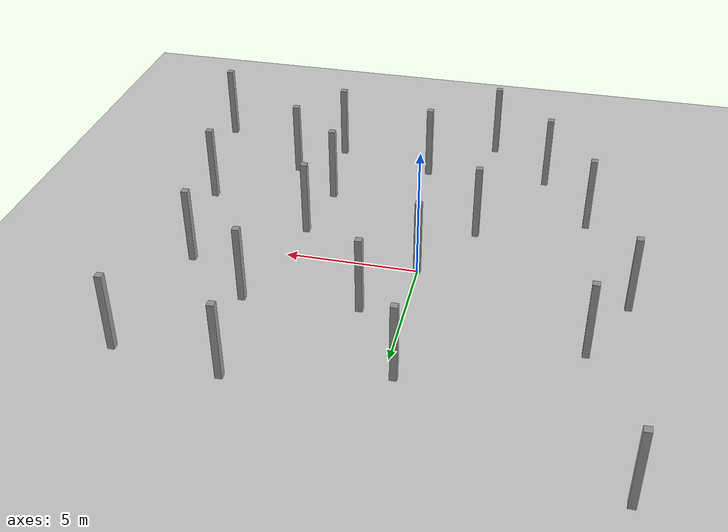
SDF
<sdf version="1.6">
 <world name="default">
  <light name="sun" type="directional">
   <pose>0 0 10 0 -0 0</pose>
   <diffuse>0.8 0.8 0.8 1</diffuse>
   <specular>0.1 0.1 0.1 1</specular>
   <attenuation>
    <range>1000</range>
    <constant>0.9</constant>
    <linear>0.01</linear>
    <quadratic>0.001</quadratic>
   </attenuation>
   <direction>-0.5 0.5 -1</direction>
  </light>
  <model name="ground_plane">
   <static>1</static>
   <link name="link">
    <collision name="collision">
     <geometry><plane><normal>0 0 1</normal><size>100 100</size></plane></geometry>
     <surface><friction><ode><mu>100</mu><mu2>50</mu2></ode></friction></surface>
    </collision>
    <visual name="visual">
     <cast_shadows>0</cast_shadows>
     <geometry><plane><normal>0 0 1</normal><size>100 100</size></plane></geometry>
     <material>
      <script><uri>file://media/materials/scripts/gazebo.material</uri><name>Gazebo/Grey</name></script>
     </material>
    </visual>
   </link>
  </model>
  <gravity>0 0 -9.8</gravity>
  <magnetic_field>6e-06 2.3e-05 -4.2e-05</magnetic_field>
  <atmosphere type="adiabatic"/>
  <physics name="default_physics" default="0" type="ode">
   <max_step_size>0.001</max_step_size>
   <real_time_factor>1</real_time_factor>
   <real_time_update_rate>1000</real_time_update_rate>
  </physics>
  <scene><ambient>0.4 0.4 0.4 1</ambient><background>0.7 0.7 0.7 1</background><shadows>1</shadows></scene>
  <spherical_coordinates>
   <surface_model>EARTH_WGS84</surface_model>
   <latitude_deg>0</latitude_deg>
   <longitude_deg>0</longitude_deg>
   <elevation>0</elevation>
   <heading_deg>0</heading_deg>
  </spherical_coordinates>
  <model name="box_2">
   <link name="link">
    <pose>0 0 1 0 -0 0</pose>
    <inertial>
     <mass>1</mass>
     <inertia><ixx>5.16667</ixx><ixy>0</ixy><ixz>0</ixz><iyy>5.16667</iyy><iyz>0</iyz><izz>5.16667</izz></inertia>
     <pose>0 0 1 0 -0 0</pose>
    </inertial>
    <visual name="ModelPreview_4::link::visual_1">
     <geometry><box><size>0.25 0.25 3</size></box></geometry>
     <material>
      <script><name>Gazebo/Grey</name><uri>file://media/materials/scripts/gazebo.material</uri></script>
      <ambient>0.3 0.3 0.3 1</ambient>
      <diffuse>0.7 0.7 0.7 1</diffuse>
      <specular>0.01 0.01 0.01 1</specular>
      <emissive>0 0 0 1</emissive>
      <shader type="vertex"><normal_map>__default__</normal_map></shader>
     </material>
    </visual>
    <visual name="visual">
     <geometry><box><size>0.25 0.25 3</size></box></geometry>
     <material>
      <script><name>Gazebo/Grey</name><uri>file://media/materials/scripts/gazebo.material</uri></script>
      <ambient>0.3 0.3 0.3 1</ambient>
      <diffuse>0.7 0.7 0.7 1</diffuse>
      <specular>0.01 0.01 0.01 1</specular>
      <emissive>0 0 0 1</emissive>
      <shader type="vertex"><normal_map>__default__</normal_map></shader>
     </material>
    </visual>
    <collision name="collision">
     <geometry><box><size>0.25 0.25 3</size></box></geometry>
     <surface>
      <friction>
       <ode><mu>1</mu><mu2>1</mu2><fdir1>0 0 0</fdir1><slip1>0</slip1><slip2>0</slip2></ode>
       <torsional>
        <coefficient>1</coefficient>
        <patch_radius>0</patch_radius>
        <surface_radius>0</surface_radius>
        <use_patch_radius>1</use_patch_radius>
        <ode><slip>0</slip></ode>
       </torsional>
      </friction>
      <bounce><restitution_coefficient>0</restitution_coefficient><threshold>1e+06</threshold></bounce>
      <contact>
       <collide_without_contact>0</collide_without_contact>
       <collide_without_contact_bitmask>1</collide_without_contact_bitmask>
       <collide_bitmask>1</collide_bitmask>
       <ode>
        <soft_cfm>0</soft_cfm>
        <soft_erp>0.2</soft_erp>
        <kp>1e+13</kp>
        <kd>1</kd>
        <max_vel>0.01</max_vel>
        <min_depth>0</min_depth>
       </ode>
       <bullet>
        <split_impulse>1</split_impulse>
        <split_impulse_penetration_threshold>-0.01</split_impulse_penetration_threshold>
        <soft_cfm>0</soft_cfm>
        <soft_erp>0.2</soft_erp>
        <kp>1e+13</kp>
        <kd>1</kd>
       </bullet>
      </contact>
     </surface>
    </collision>
   </link>
   <static>0</static>
   <pose>0.011479 -0.030638 0.5 0 0 -8.9e-05</pose>
  </model>
  <model name="box_2_0">
   <link name="link">
    <pose>0 0 1 0 -0 0</pose>
    <inertial>
     <mass>1</mass>
     <inertia><ixx>5.16667</ixx><ixy>0</ixy><ixz>0</ixz><iyy>5.16667</iyy><iyz>0</iyz><izz>5.16667</izz></inertia>
     <pose>0 0 1 0 -0 0</pose>
    </inertial>
    <visual name="ModelPreview_4::link::visual_1">
     <geometry><box><size>0.25 0.25 3</size></box></geometry>
     <material>
      <script><name>Gazebo/Grey</name><uri>file://media/materials/scripts/gazebo.material</uri></script>
      <ambient>0.3 0.3 0.3 1</ambient>
      <diffuse>0.7 0.7 0.7 1</diffuse>
      <specular>0.01 0.01 0.01 1</specular>
      <emissive>0 0 0 1</emissive>
      <shader type="vertex"><normal_map>__default__</normal_map></shader>
     </material>
    </visual>
    <visual name="visual">
     <geometry><box><size>0.25 0.25 3</size></box></geometry>
     <material>
      <script><name>Gazebo/Grey</name><uri>file://media/materials/scripts/gazebo.material</uri></script>
      <ambient>0.3 0.3 0.3 1</ambient>
      <diffuse>0.7 0.7 0.7 1</diffuse>
      <specular>0.01 0.01 0.01 1</specular>
      <emissive>0 0 0 1</emissive>
      <shader type="vertex"><normal_map>__default__</normal_map></shader>
     </material>
    </visual>
    <collision name="collision">
     <geometry><box><size>0.25 0.25 3</size></box></geometry>
     <surface>
      <friction>
       <ode><mu>1</mu><mu2>1</mu2><fdir1>0 0 0</fdir1><slip1>0</slip1><slip2>0</slip2></ode>
       <torsional>
        <coefficient>1</coefficient>
        <patch_radius>0</patch_radius>
        <surface_radius>0</surface_radius>
        <use_patch_radius>1</use_patch_radius>
        <ode><slip>0</slip></ode>
       </torsional>
      </friction>
      <bounce><restitution_coefficient>0</restitution_coefficient><threshold>1e+06</threshold></bounce>
      <contact>
       <collide_without_contact>0</collide_without_contact>
       <collide_without_contact_bitmask>1</collide_without_contact_bitmask>
       <collide_bitmask>1</collide_bitmask>
       <ode>
        <soft_cfm>0</soft_cfm>
        <soft_erp>0.2</soft_erp>
        <kp>1e+13</kp>
        <kd>1</kd>
        <max_vel>0.01</max_vel>
        <min_depth>0</min_depth>
       </ode>
       <bullet>
        <split_impulse>1</split_impulse>
        <split_impulse_penetration_threshold>-0.01</split_impulse_penetration_threshold>
        <soft_cfm>0</soft_cfm>
        <soft_erp>0.2</soft_erp>
        <kp>1e+13</kp>
        <kd>1</kd>
       </bullet>
      </contact>
     </surface>
    </collision>
   </link>
   <static>0</static>
   <pose>-1.75418 -2.8754 0.5 1e-06 0 -0.000104</pose>
  </model>
  <model name="box_2_1">
   <link name="link">
    <pose>0 0 1 0 -0 0</pose>
    <inertial>
     <mass>1</mass>
     <inertia><ixx>5.16667</ixx><ixy>0</ixy><ixz>0</ixz><iyy>5.16667</iyy><iyz>0</iyz><izz>5.16667</izz></inertia>
     <pose>0 0 1 0 -0 0</pose>
    </inertial>
    <visual name="ModelPreview_4::link::visual_1">
     <geometry><box><size>0.25 0.25 3</size></box></geometry>
     <material>
      <script><name>Gazebo/Grey</name><uri>file://media/materials/scripts/gazebo.material</uri></script>
      <ambient>0.3 0.3 0.3 1</ambient>
      <diffuse>0.7 0.7 0.7 1</diffuse>
      <specular>0.01 0.01 0.01 1</specular>
      <emissive>0 0 0 1</emissive>
      <shader type="vertex"><normal_map>__default__</normal_map></shader>
     </material>
    </visual>
    <visual name="visual">
     <geometry><box><size>0.25 0.25 3</size></box></geometry>
     <material>
      <script><name>Gazebo/Grey</name><uri>file://media/materials/scripts/gazebo.material</uri></script>
      <ambient>0.3 0.3 0.3 1</ambient>
      <diffuse>0.7 0.7 0.7 1</diffuse>
      <specular>0.01 0.01 0.01 1</specular>
      <emissive>0 0 0 1</emissive>
      <shader type="vertex"><normal_map>__default__</normal_map></shader>
     </material>
    </visual>
    <collision name="collision">
     <geometry><box><size>0.25 0.25 3</size></box></geometry>
     <surface>
      <friction>
       <ode><mu>1</mu><mu2>1</mu2><fdir1>0 0 0</fdir1><slip1>0</slip1><slip2>0</slip2></ode>
       <torsional>
        <coefficient>1</coefficient>
        <patch_radius>0</patch_radius>
        <surface_radius>0</surface_radius>
        <use_patch_radius>1</use_patch_radius>
        <ode><slip>0</slip></ode>
       </torsional>
      </friction>
      <bounce><restitution_coefficient>0</restitution_coefficient><threshold>1e+06</threshold></bounce>
      <contact>
       <collide_without_contact>0</collide_without_contact>
       <collide_without_contact_bitmask>1</collide_without_contact_bitmask>
       <collide_bitmask>1</collide_bitmask>
       <ode>
        <soft_cfm>0</soft_cfm>
        <soft_erp>0.2</soft_erp>
        <kp>1e+13</kp>
        <kd>1</kd>
        <max_vel>0.01</max_vel>
        <min_depth>0</min_depth>
       </ode>
       <bullet>
        <split_impulse>1</split_impulse>
        <split_impulse_penetration_threshold>-0.01</split_impulse_penetration_threshold>
        <soft_cfm>0</soft_cfm>
        <soft_erp>0.2</soft_erp>
        <kp>1e+13</kp>
        <kd>1</kd>
       </bullet>
      </contact>
     </surface>
    </collision>
   </link>
   <static>0</static>
   <pose>4.34755 -4.46954 0.5 -1e-06 -1e-06 -0.000107</pose>
  </model>
  <model name="box_2_2">
   <link name="link">
    <pose>0 0 1 0 -0 0</pose>
    <inertial>
     <mass>1</mass>
     <inertia><ixx>5.16667</ixx><ixy>0</ixy><ixz>0</ixz><iyy>5.16667</iyy><iyz>0</iyz><izz>5.16667</izz></inertia>
     <pose>0 0 1 0 -0 0</pose>
    </inertial>
    <visual name="ModelPreview_4::link::visual_1">
     <geometry><box><size>0.25 0.25 3</size></box></geometry>
     <material>
      <script><name>Gazebo/Grey</name><uri>file://media/materials/scripts/gazebo.material</uri></script>
      <ambient>0.3 0.3 0.3 1</ambient>
      <diffuse>0.7 0.7 0.7 1</diffuse>
      <specular>0.01 0.01 0.01 1</specular>
      <emissive>0 0 0 1</emissive>
      <shader type="vertex"><normal_map>__default__</normal_map></shader>
     </material>
    </visual>
    <visual name="visual">
     <geometry><box><size>0.25 0.25 3</size></box></geometry>
     <material>
      <script><name>Gazebo/Grey</name><uri>file://media/materials/scripts/gazebo.material</uri></script>
      <ambient>0.3 0.3 0.3 1</ambient>
      <diffuse>0.7 0.7 0.7 1</diffuse>
      <specular>0.01 0.01 0.01 1</specular>
      <emissive>0 0 0 1</emissive>
      <shader type="vertex"><normal_map>__default__</normal_map></shader>
     </material>
    </visual>
    <collision name="collision">
     <geometry><box><size>0.25 0.25 3</size></box></geometry>
     <surface>
      <friction>
       <ode><mu>1</mu><mu2>1</mu2><fdir1>0 0 0</fdir1><slip1>0</slip1><slip2>0</slip2></ode>
       <torsional>
        <coefficient>1</coefficient>
        <patch_radius>0</patch_radius>
        <surface_radius>0</surface_radius>
        <use_patch_radius>1</use_patch_radius>
        <ode><slip>0</slip></ode>
       </torsional>
      </friction>
      <bounce><restitution_coefficient>0</restitution_coefficient><threshold>1e+06</threshold></bounce>
      <contact>
       <collide_without_contact>0</collide_without_contact>
       <collide_without_contact_bitmask>1</collide_without_contact_bitmask>
       <collide_bitmask>1</collide_bitmask>
       <ode>
        <soft_cfm>0</soft_cfm>
        <soft_erp>0.2</soft_erp>
        <kp>1e+13</kp>
        <kd>1</kd>
        <max_vel>0.01</max_vel>
        <min_depth>0</min_depth>
       </ode>
       <bullet>
        <split_impulse>1</split_impulse>
        <split_impulse_penetration_threshold>-0.01</split_impulse_penetration_threshold>
        <soft_cfm>0</soft_cfm>
        <soft_erp>0.2</soft_erp>
        <kp>1e+13</kp>
        <kd>1</kd>
       </bullet>
      </contact>
     </surface>
    </collision>
   </link>
   <static>0</static>
   <pose>0.856143 -7.09516 0.5 0 0 -0.000173</pose>
  </model>
  <model name="box_2_3">
   <link name="link">
    <pose>0 0 1 0 -0 0</pose>
    <inertial>
     <mass>1</mass>
     <inertia><ixx>5.16667</ixx><ixy>0</ixy><ixz>0</ixz><iyy>5.16667</iyy><iyz>0</iyz><izz>5.16667</izz></inertia>
     <pose>0 0 1 0 -0 0</pose>
    </inertial>
    <visual name="ModelPreview_4::link::visual_1">
     <geometry><box><size>0.25 0.25 3</size></box></geometry>
     <material>
      <script><name>Gazebo/Grey</name><uri>file://media/materials/scripts/gazebo.material</uri></script>
      <ambient>0.3 0.3 0.3 1</ambient>
      <diffuse>0.7 0.7 0.7 1</diffuse>
      <specular>0.01 0.01 0.01 1</specular>
      <emissive>0 0 0 1</emissive>
      <shader type="vertex"><normal_map>__default__</normal_map></shader>
     </material>
    </visual>
    <visual name="visual">
     <geometry><box><size>0.25 0.25 3</size></box></geometry>
     <material>
      <script><name>Gazebo/Grey</name><uri>file://media/materials/scripts/gazebo.material</uri></script>
      <ambient>0.3 0.3 0.3 1</ambient>
      <diffuse>0.7 0.7 0.7 1</diffuse>
      <specular>0.01 0.01 0.01 1</specular>
      <emissive>0 0 0 1</emissive>
      <shader type="vertex"><normal_map>__default__</normal_map></shader>
     </material>
    </visual>
    <collision name="collision">
     <geometry><box><size>0.25 0.25 3</size></box></geometry>
     <surface>
      <friction>
       <ode><mu>1</mu><mu2>1</mu2><fdir1>0 0 0</fdir1><slip1>0</slip1><slip2>0</slip2></ode>
       <torsional>
        <coefficient>1</coefficient>
        <patch_radius>0</patch_radius>
        <surface_radius>0</surface_radius>
        <use_patch_radius>1</use_patch_radius>
        <ode><slip>0</slip></ode>
       </torsional>
      </friction>
      <bounce><restitution_coefficient>0</restitution_coefficient><threshold>1e+06</threshold></bounce>
      <contact>
       <collide_without_contact>0</collide_without_contact>
       <collide_without_contact_bitmask>1</collide_without_contact_bitmask>
       <collide_bitmask>1</collide_bitmask>
       <ode>
        <soft_cfm>0</soft_cfm>
        <soft_erp>0.2</soft_erp>
        <kp>1e+13</kp>
        <kd>1</kd>
        <max_vel>0.01</max_vel>
        <min_depth>0</min_depth>
       </ode>
       <bullet>
        <split_impulse>1</split_impulse>
        <split_impulse_penetration_threshold>-0.01</split_impulse_penetration_threshold>
        <soft_cfm>0</soft_cfm>
        <soft_erp>0.2</soft_erp>
        <kp>1e+13</kp>
        <kd>1</kd>
       </bullet>
      </contact>
     </surface>
    </collision>
   </link>
   <static>0</static>
   <pose>4.77919 -8.07362 0.500001 3e-06 -8e-06 -0.000115</pose>
  </model>
  <model name="box_2_4">
   <link name="link">
    <pose>0 0 1 0 -0 0</pose>
    <inertial>
     <mass>1</mass>
     <inertia><ixx>5.16667</ixx><ixy>0</ixy><ixz>0</ixz><iyy>5.16667</iyy><iyz>0</iyz><izz>5.16667</izz></inertia>
     <pose>0 0 1 0 -0 0</pose>
    </inertial>
    <visual name="ModelPreview_4::link::visual_1">
     <geometry><box><size>0.25 0.25 3</size></box></geometry>
     <material>
      <script><name>Gazebo/Grey</name><uri>file://media/materials/scripts/gazebo.material</uri></script>
      <ambient>0.3 0.3 0.3 1</ambient>
      <diffuse>0.7 0.7 0.7 1</diffuse>
      <specular>0.01 0.01 0.01 1</specular>
      <emissive>0 0 0 1</emissive>
      <shader type="vertex"><normal_map>__default__</normal_map></shader>
     </material>
    </visual>
    <visual name="visual">
     <geometry><box><size>0.25 0.25 3</size></box></geometry>
     <material>
      <script><name>Gazebo/Grey</name><uri>file://media/materials/scripts/gazebo.material</uri></script>
      <ambient>0.3 0.3 0.3 1</ambient>
      <diffuse>0.7 0.7 0.7 1</diffuse>
      <specular>0.01 0.01 0.01 1</specular>
      <emissive>0 0 0 1</emissive>
      <shader type="vertex"><normal_map>__default__</normal_map></shader>
     </material>
    </visual>
    <collision name="collision">
     <geometry><box><size>0.25 0.25 3</size></box></geometry>
     <surface>
      <friction>
       <ode><mu>1</mu><mu2>1</mu2><fdir1>0 0 0</fdir1><slip1>0</slip1><slip2>0</slip2></ode>
       <torsional>
        <coefficient>1</coefficient>
        <patch_radius>0</patch_radius>
        <surface_radius>0</surface_radius>
        <use_patch_radius>1</use_patch_radius>
        <ode><slip>0</slip></ode>
       </torsional>
      </friction>
      <bounce><restitution_coefficient>0</restitution_coefficient><threshold>1e+06</threshold></bounce>
      <contact>
       <collide_without_contact>0</collide_without_contact>
       <collide_without_contact_bitmask>1</collide_without_contact_bitmask>
       <collide_bitmask>1</collide_bitmask>
       <ode>
        <soft_cfm>0</soft_cfm>
        <soft_erp>0.2</soft_erp>
        <kp>1e+13</kp>
        <kd>1</kd>
        <max_vel>0.01</max_vel>
        <min_depth>0</min_depth>
       </ode>
       <bullet>
        <split_impulse>1</split_impulse>
        <split_impulse_penetration_threshold>-0.01</split_impulse_penetration_threshold>
        <soft_cfm>0</soft_cfm>
        <soft_erp>0.2</soft_erp>
        <kp>1e+13</kp>
        <kd>1</kd>
       </bullet>
      </contact>
     </surface>
    </collision>
   </link>
   <static>0</static>
   <pose>9.12443 -3.46245 0.5 0 -3e-06 -0.000162</pose>
  </model>
  <model name="box_2_5">
   <link name="link">
    <pose>0 0 1 0 -0 0</pose>
    <inertial>
     <mass>1</mass>
     <inertia><ixx>5.16667</ixx><ixy>0</ixy><ixz>0</ixz><iyy>5.16667</iyy><iyz>0</iyz><izz>5.16667</izz></inertia>
     <pose>0 0 1 0 -0 0</pose>
    </inertial>
    <visual name="ModelPreview_4::link::visual_1">
     <geometry><box><size>0.25 0.25 3</size></box></geometry>
     <material>
      <script><name>Gazebo/Grey</name><uri>file://media/materials/scripts/gazebo.material</uri></script>
      <ambient>0.3 0.3 0.3 1</ambient>
      <diffuse>0.7 0.7 0.7 1</diffuse>
      <specular>0.01 0.01 0.01 1</specular>
      <emissive>0 0 0 1</emissive>
      <shader type="vertex"><normal_map>__default__</normal_map></shader>
     </material>
    </visual>
    <visual name="visual">
     <geometry><box><size>0.25 0.25 3</size></box></geometry>
     <material>
      <script><name>Gazebo/Grey</name><uri>file://media/materials/scripts/gazebo.material</uri></script>
      <ambient>0.3 0.3 0.3 1</ambient>
      <diffuse>0.7 0.7 0.7 1</diffuse>
      <specular>0.01 0.01 0.01 1</specular>
      <emissive>0 0 0 1</emissive>
      <shader type="vertex"><normal_map>__default__</normal_map></shader>
     </material>
    </visual>
    <collision name="collision">
     <geometry><box><size>0.25 0.25 3</size></box></geometry>
     <surface>
      <friction>
       <ode><mu>1</mu><mu2>1</mu2><fdir1>0 0 0</fdir1><slip1>0</slip1><slip2>0</slip2></ode>
       <torsional>
        <coefficient>1</coefficient>
        <patch_radius>0</patch_radius>
        <surface_radius>0</surface_radius>
        <use_patch_radius>1</use_patch_radius>
        <ode><slip>0</slip></ode>
       </torsional>
      </friction>
      <bounce><restitution_coefficient>0</restitution_coefficient><threshold>1e+06</threshold></bounce>
      <contact>
       <collide_without_contact>0</collide_without_contact>
       <collide_without_contact_bitmask>1</collide_without_contact_bitmask>
       <collide_bitmask>1</collide_bitmask>
       <ode>
        <soft_cfm>0</soft_cfm>
        <soft_erp>0.2</soft_erp>
        <kp>1e+13</kp>
        <kd>1</kd>
        <max_vel>0.01</max_vel>
        <min_depth>0</min_depth>
       </ode>
       <bullet>
        <split_impulse>1</split_impulse>
        <split_impulse_penetration_threshold>-0.01</split_impulse_penetration_threshold>
        <soft_cfm>0</soft_cfm>
        <soft_erp>0.2</soft_erp>
        <kp>1e+13</kp>
        <kd>1</kd>
       </bullet>
      </contact>
     </surface>
    </collision>
   </link>
   <static>0</static>
   <pose>6.33329 -6.18583 0.500001 -2e-06 -2e-06 -0.000178</pose>
  </model>
  <model name="box_2_6">
   <link name="link">
    <pose>0 0 1 0 -0 0</pose>
    <inertial>
     <mass>1</mass>
     <inertia><ixx>5.16667</ixx><ixy>0</ixy><ixz>0</ixz><iyy>5.16667</iyy><iyz>0</iyz><izz>5.16667</izz></inertia>
     <pose>0 0 1 0 -0 0</pose>
    </inertial>
    <visual name="ModelPreview_4::link::visual_1">
     <geometry><box><size>0.25 0.25 3</size></box></geometry>
     <material>
      <script><name>Gazebo/Grey</name><uri>file://media/materials/scripts/gazebo.material</uri></script>
      <ambient>0.3 0.3 0.3 1</ambient>
      <diffuse>0.7 0.7 0.7 1</diffuse>
      <specular>0.01 0.01 0.01 1</specular>
      <emissive>0 0 0 1</emissive>
      <shader type="vertex"><normal_map>__default__</normal_map></shader>
     </material>
    </visual>
    <visual name="visual">
     <geometry><box><size>0.25 0.25 3</size></box></geometry>
     <material>
      <script><name>Gazebo/Grey</name><uri>file://media/materials/scripts/gazebo.material</uri></script>
      <ambient>0.3 0.3 0.3 1</ambient>
      <diffuse>0.7 0.7 0.7 1</diffuse>
      <specular>0.01 0.01 0.01 1</specular>
      <emissive>0 0 0 1</emissive>
      <shader type="vertex"><normal_map>__default__</normal_map></shader>
     </material>
    </visual>
    <collision name="collision">
     <geometry><box><size>0.25 0.25 3</size></box></geometry>
     <surface>
      <friction>
       <ode><mu>1</mu><mu2>1</mu2><fdir1>0 0 0</fdir1><slip1>0</slip1><slip2>0</slip2></ode>
       <torsional>
        <coefficient>1</coefficient>
        <patch_radius>0</patch_radius>
        <surface_radius>0</surface_radius>
        <use_patch_radius>1</use_patch_radius>
        <ode><slip>0</slip></ode>
       </torsional>
      </friction>
      <bounce><restitution_coefficient>0</restitution_coefficient><threshold>1e+06</threshold></bounce>
      <contact>
       <collide_without_contact>0</collide_without_contact>
       <collide_without_contact_bitmask>1</collide_without_contact_bitmask>
       <collide_bitmask>1</collide_bitmask>
       <ode>
        <soft_cfm>0</soft_cfm>
        <soft_erp>0.2</soft_erp>
        <kp>1e+13</kp>
        <kd>1</kd>
        <max_vel>0.01</max_vel>
        <min_depth>0</min_depth>
       </ode>
       <bullet>
        <split_impulse>1</split_impulse>
        <split_impulse_penetration_threshold>-0.01</split_impulse_penetration_threshold>
        <soft_cfm>0</soft_cfm>
        <soft_erp>0.2</soft_erp>
        <kp>1e+13</kp>
        <kd>1</kd>
       </bullet>
      </contact>
     </surface>
    </collision>
   </link>
   <static>0</static>
   <pose>-4.05228 -7.30453 0.5 2e-06 0 -0.000173</pose>
  </model>
  <model name="box_2_7">
   <link name="link">
    <pose>0 0 1 0 -0 0</pose>
    <inertial>
     <mass>1</mass>
     <inertia><ixx>5.16667</ixx><ixy>0</ixy><ixz>0</ixz><iyy>5.16667</iyy><iyz>0</iyz><izz>5.16667</izz></inertia>
     <pose>0 0 1 0 -0 0</pose>
    </inertial>
    <visual name="ModelPreview_4::link::visual_1">
     <geometry><box><size>0.25 0.25 3</size></box></geometry>
     <material>
      <script><name>Gazebo/Grey</name><uri>file://media/materials/scripts/gazebo.material</uri></script>
      <ambient>0.3 0.3 0.3 1</ambient>
      <diffuse>0.7 0.7 0.7 1</diffuse>
      <specular>0.01 0.01 0.01 1</specular>
      <emissive>0 0 0 1</emissive>
      <shader type="vertex"><normal_map>__default__</normal_map></shader>
     </material>
    </visual>
    <visual name="visual">
     <geometry><box><size>0.25 0.25 3</size></box></geometry>
     <material>
      <script><name>Gazebo/Grey</name><uri>file://media/materials/scripts/gazebo.material</uri></script>
      <ambient>0.3 0.3 0.3 1</ambient>
      <diffuse>0.7 0.7 0.7 1</diffuse>
      <specular>0.01 0.01 0.01 1</specular>
      <emissive>0 0 0 1</emissive>
      <shader type="vertex"><normal_map>__default__</normal_map></shader>
     </material>
    </visual>
    <collision name="collision">
     <geometry><box><size>0.25 0.25 3</size></box></geometry>
     <surface>
      <friction>
       <ode><mu>1</mu><mu2>1</mu2><fdir1>0 0 0</fdir1><slip1>0</slip1><slip2>0</slip2></ode>
       <torsional>
        <coefficient>1</coefficient>
        <patch_radius>0</patch_radius>
        <surface_radius>0</surface_radius>
        <use_patch_radius>1</use_patch_radius>
        <ode><slip>0</slip></ode>
       </torsional>
      </friction>
      <bounce><restitution_coefficient>0</restitution_coefficient><threshold>1e+06</threshold></bounce>
      <contact>
       <collide_without_contact>0</collide_without_contact>
       <collide_without_contact_bitmask>1</collide_without_contact_bitmask>
       <collide_bitmask>1</collide_bitmask>
       <ode>
        <soft_cfm>0</soft_cfm>
        <soft_erp>0.2</soft_erp>
        <kp>1e+13</kp>
        <kd>1</kd>
        <max_vel>0.01</max_vel>
        <min_depth>0</min_depth>
       </ode>
       <bullet>
        <split_impulse>1</split_impulse>
        <split_impulse_penetration_threshold>-0.01</split_impulse_penetration_threshold>
        <soft_cfm>0</soft_cfm>
        <soft_erp>0.2</soft_erp>
        <kp>1e+13</kp>
        <kd>1</kd>
       </bullet>
      </contact>
     </surface>
    </collision>
   </link>
   <static>0</static>
   <pose>-5.90999 -4.40028 0.5 -2e-06 1e-06 -0.000129</pose>
  </model>
  <model name="box_2_8">
   <link name="link">
    <pose>0 0 1 0 -0 0</pose>
    <inertial>
     <mass>1</mass>
     <inertia><ixx>5.16667</ixx><ixy>0</ixy><ixz>0</ixz><iyy>5.16667</iyy><iyz>0</iyz><izz>5.16667</izz></inertia>
     <pose>0 0 1 0 -0 0</pose>
    </inertial>
    <visual name="ModelPreview_4::link::visual_1">
     <geometry><box><size>0.25 0.25 3</size></box></geometry>
     <material>
      <script><name>Gazebo/Grey</name><uri>file://media/materials/scripts/gazebo.material</uri></script>
      <ambient>0.3 0.3 0.3 1</ambient>
      <diffuse>0.7 0.7 0.7 1</diffuse>
      <specular>0.01 0.01 0.01 1</specular>
      <emissive>0 0 0 1</emissive>
      <shader type="vertex"><normal_map>__default__</normal_map></shader>
     </material>
    </visual>
    <visual name="visual">
     <geometry><box><size>0.25 0.25 3</size></box></geometry>
     <material>
      <script><name>Gazebo/Grey</name><uri>file://media/materials/scripts/gazebo.material</uri></script>
      <ambient>0.3 0.3 0.3 1</ambient>
      <diffuse>0.7 0.7 0.7 1</diffuse>
      <specular>0.01 0.01 0.01 1</specular>
      <emissive>0 0 0 1</emissive>
      <shader type="vertex"><normal_map>__default__</normal_map></shader>
     </material>
    </visual>
    <collision name="collision">
     <geometry><box><size>0.25 0.25 3</size></box></geometry>
     <surface>
      <friction>
       <ode><mu>1</mu><mu2>1</mu2><fdir1>0 0 0</fdir1><slip1>0</slip1><slip2>0</slip2></ode>
       <torsional>
        <coefficient>1</coefficient>
        <patch_radius>0</patch_radius>
        <surface_radius>0</surface_radius>
        <use_patch_radius>1</use_patch_radius>
        <ode><slip>0</slip></ode>
       </torsional>
      </friction>
      <bounce><restitution_coefficient>0</restitution_coefficient><threshold>1e+06</threshold></bounce>
      <contact>
       <collide_without_contact>0</collide_without_contact>
       <collide_without_contact_bitmask>1</collide_without_contact_bitmask>
       <collide_bitmask>1</collide_bitmask>
       <ode>
        <soft_cfm>0</soft_cfm>
        <soft_erp>0.2</soft_erp>
        <kp>1e+13</kp>
        <kd>1</kd>
        <max_vel>0.01</max_vel>
        <min_depth>0</min_depth>
       </ode>
       <bullet>
        <split_impulse>1</split_impulse>
        <split_impulse_penetration_threshold>-0.01</split_impulse_penetration_threshold>
        <soft_cfm>0</soft_cfm>
        <soft_erp>0.2</soft_erp>
        <kp>1e+13</kp>
        <kd>1</kd>
       </bullet>
      </contact>
     </surface>
    </collision>
   </link>
   <static>0</static>
   <pose>5.78441 2.90477 0.5 0 -1e-06 -0.000136</pose>
  </model>
  <model name="box_2_9">
   <link name="link">
    <pose>0 0 1 0 -0 0</pose>
    <inertial>
     <mass>1</mass>
     <inertia><ixx>5.16667</ixx><ixy>0</ixy><ixz>0</ixz><iyy>5.16667</iyy><iyz>0</iyz><izz>5.16667</izz></inertia>
     <pose>0 0 1 0 -0 0</pose>
    </inertial>
    <visual name="ModelPreview_4::link::visual_1">
     <geometry><box><size>0.25 0.25 3</size></box></geometry>
     <material>
      <script><name>Gazebo/Grey</name><uri>file://media/materials/scripts/gazebo.material</uri></script>
      <ambient>0.3 0.3 0.3 1</ambient>
      <diffuse>0.7 0.7 0.7 1</diffuse>
      <specular>0.01 0.01 0.01 1</specular>
      <emissive>0 0 0 1</emissive>
      <shader type="vertex"><normal_map>__default__</normal_map></shader>
     </material>
    </visual>
    <visual name="visual">
     <geometry><box><size>0.25 0.25 3</size></box></geometry>
     <material>
      <script><name>Gazebo/Grey</name><uri>file://media/materials/scripts/gazebo.material</uri></script>
      <ambient>0.3 0.3 0.3 1</ambient>
      <diffuse>0.7 0.7 0.7 1</diffuse>
      <specular>0.01 0.01 0.01 1</specular>
      <emissive>0 0 0 1</emissive>
      <shader type="vertex"><normal_map>__default__</normal_map></shader>
     </material>
    </visual>
    <collision name="collision">
     <geometry><box><size>0.25 0.25 3</size></box></geometry>
     <surface>
      <friction>
       <ode><mu>1</mu><mu2>1</mu2><fdir1>0 0 0</fdir1><slip1>0</slip1><slip2>0</slip2></ode>
       <torsional>
        <coefficient>1</coefficient>
        <patch_radius>0</patch_radius>
        <surface_radius>0</surface_radius>
        <use_patch_radius>1</use_patch_radius>
        <ode><slip>0</slip></ode>
       </torsional>
      </friction>
      <bounce><restitution_coefficient>0</restitution_coefficient><threshold>1e+06</threshold></bounce>
      <contact>
       <collide_without_contact>0</collide_without_contact>
       <collide_without_contact_bitmask>1</collide_without_contact_bitmask>
       <collide_bitmask>1</collide_bitmask>
       <ode>
        <soft_cfm>0</soft_cfm>
        <soft_erp>0.2</soft_erp>
        <kp>1e+13</kp>
        <kd>1</kd>
        <max_vel>0.01</max_vel>
        <min_depth>0</min_depth>
       </ode>
       <bullet>
        <split_impulse>1</split_impulse>
        <split_impulse_penetration_threshold>-0.01</split_impulse_penetration_threshold>
        <soft_cfm>0</soft_cfm>
        <soft_erp>0.2</soft_erp>
        <kp>1e+13</kp>
        <kd>1</kd>
       </bullet>
      </contact>
     </surface>
    </collision>
   </link>
   <static>0</static>
   <pose>4.72697 -1.74519 0.5 3e-06 -0 -9.7e-05</pose>
  </model>
  <model name="box_2_10">
   <link name="link">
    <pose>0 0 1 0 -0 0</pose>
    <inertial>
     <mass>1</mass>
     <inertia><ixx>5.16667</ixx><ixy>0</ixy><ixz>0</ixz><iyy>5.16667</iyy><iyz>0</iyz><izz>5.16667</izz></inertia>
     <pose>0 0 1 0 -0 0</pose>
    </inertial>
    <visual name="ModelPreview_4::link::visual_1">
     <geometry><box><size>0.25 0.25 3</size></box></geometry>
     <material>
      <script><name>Gazebo/Grey</name><uri>file://media/materials/scripts/gazebo.material</uri></script>
      <ambient>0.3 0.3 0.3 1</ambient>
      <diffuse>0.7 0.7 0.7 1</diffuse>
      <specular>0.01 0.01 0.01 1</specular>
      <emissive>0 0 0 1</emissive>
      <shader type="vertex"><normal_map>__default__</normal_map></shader>
     </material>
    </visual>
    <visual name="visual">
     <geometry><box><size>0.25 0.25 3</size></box></geometry>
     <material>
      <script><name>Gazebo/Grey</name><uri>file://media/materials/scripts/gazebo.material</uri></script>
      <ambient>0.3 0.3 0.3 1</ambient>
      <diffuse>0.7 0.7 0.7 1</diffuse>
      <specular>0.01 0.01 0.01 1</specular>
      <emissive>0 0 0 1</emissive>
      <shader type="vertex"><normal_map>__default__</normal_map></shader>
     </material>
    </visual>
    <collision name="collision">
     <geometry><box><size>0.25 0.25 3</size></box></geometry>
     <surface>
      <friction>
       <ode><mu>1</mu><mu2>1</mu2><fdir1>0 0 0</fdir1><slip1>0</slip1><slip2>0</slip2></ode>
       <torsional>
        <coefficient>1</coefficient>
        <patch_radius>0</patch_radius>
        <surface_radius>0</surface_radius>
        <use_patch_radius>1</use_patch_radius>
        <ode><slip>0</slip></ode>
       </torsional>
      </friction>
      <bounce><restitution_coefficient>0</restitution_coefficient><threshold>1e+06</threshold></bounce>
      <contact>
       <collide_without_contact>0</collide_without_contact>
       <collide_without_contact_bitmask>1</collide_without_contact_bitmask>
       <collide_bitmask>1</collide_bitmask>
       <ode>
        <soft_cfm>0</soft_cfm>
        <soft_erp>0.2</soft_erp>
        <kp>1e+13</kp>
        <kd>1</kd>
        <max_vel>0.01</max_vel>
        <min_depth>0</min_depth>
       </ode>
       <bullet>
        <split_impulse>1</split_impulse>
        <split_impulse_penetration_threshold>-0.01</split_impulse_penetration_threshold>
        <soft_cfm>0</soft_cfm>
        <soft_erp>0.2</soft_erp>
        <kp>1e+13</kp>
        <kd>1</kd>
       </bullet>
      </contact>
     </surface>
    </collision>
   </link>
   <static>0</static>
   <pose>-0.345708 5.8338 0.5 0 -1e-06 -0.000122</pose>
  </model>
  <model name="box_2_11">
   <link name="link">
    <pose>0 0 1 0 -0 0</pose>
    <inertial>
     <mass>1</mass>
     <inertia><ixx>5.16667</ixx><ixy>0</ixy><ixz>0</ixz><iyy>5.16667</iyy><iyz>0</iyz><izz>5.16667</izz></inertia>
     <pose>0 0 1 0 -0 0</pose>
    </inertial>
    <visual name="ModelPreview_4::link::visual_1">
     <geometry><box><size>0.25 0.25 3</size></box></geometry>
     <material>
      <script><name>Gazebo/Grey</name><uri>file://media/materials/scripts/gazebo.material</uri></script>
      <ambient>0.3 0.3 0.3 1</ambient>
      <diffuse>0.7 0.7 0.7 1</diffuse>
      <specular>0.01 0.01 0.01 1</specular>
      <emissive>0 0 0 1</emissive>
      <shader type="vertex"><normal_map>__default__</normal_map></shader>
     </material>
    </visual>
    <visual name="visual">
     <geometry><box><size>0.25 0.25 3</size></box></geometry>
     <material>
      <script><name>Gazebo/Grey</name><uri>file://media/materials/scripts/gazebo.material</uri></script>
      <ambient>0.3 0.3 0.3 1</ambient>
      <diffuse>0.7 0.7 0.7 1</diffuse>
      <specular>0.01 0.01 0.01 1</specular>
      <emissive>0 0 0 1</emissive>
      <shader type="vertex"><normal_map>__default__</normal_map></shader>
     </material>
    </visual>
    <collision name="collision">
     <geometry><box><size>0.25 0.25 3</size></box></geometry>
     <surface>
      <friction>
       <ode><mu>1</mu><mu2>1</mu2><fdir1>0 0 0</fdir1><slip1>0</slip1><slip2>0</slip2></ode>
       <torsional>
        <coefficient>1</coefficient>
        <patch_radius>0</patch_radius>
        <surface_radius>0</surface_radius>
        <use_patch_radius>1</use_patch_radius>
        <ode><slip>0</slip></ode>
       </torsional>
      </friction>
      <bounce><restitution_coefficient>0</restitution_coefficient><threshold>1e+06</threshold></bounce>
      <contact>
       <collide_without_contact>0</collide_without_contact>
       <collide_without_contact_bitmask>1</collide_without_contact_bitmask>
       <collide_bitmask>1</collide_bitmask>
       <ode>
        <soft_cfm>0</soft_cfm>
        <soft_erp>0.2</soft_erp>
        <kp>1e+13</kp>
        <kd>1</kd>
        <max_vel>0.01</max_vel>
        <min_depth>0</min_depth>
       </ode>
       <bullet>
        <split_impulse>1</split_impulse>
        <split_impulse_penetration_threshold>-0.01</split_impulse_penetration_threshold>
        <soft_cfm>0</soft_cfm>
        <soft_erp>0.2</soft_erp>
        <kp>1e+13</kp>
        <kd>1</kd>
       </bullet>
      </contact>
     </surface>
    </collision>
   </link>
   <static>0</static>
   <pose>-7.64874 0.52247 0.500001 -2e-06 3e-06 -0.000128</pose>
  </model>
  <model name="box_2_12">
   <link name="link">
    <pose>0 0 1 0 -0 0</pose>
    <inertial>
     <mass>1</mass>
     <inertia><ixx>5.16667</ixx><ixy>0</ixy><ixz>0</ixz><iyy>5.16667</iyy><iyz>0</iyz><izz>5.16667</izz></inertia>
     <pose>0 0 1 0 -0 0</pose>
    </inertial>
    <visual name="ModelPreview_4::link::visual_1">
     <geometry><box><size>0.25 0.25 3</size></box></geometry>
     <material>
      <script><name>Gazebo/Grey</name><uri>file://media/materials/scripts/gazebo.material</uri></script>
      <ambient>0.3 0.3 0.3 1</ambient>
      <diffuse>0.7 0.7 0.7 1</diffuse>
      <specular>0.01 0.01 0.01 1</specular>
      <emissive>0 0 0 1</emissive>
      <shader type="vertex"><normal_map>__default__</normal_map></shader>
     </material>
    </visual>
    <visual name="visual">
     <geometry><box><size>0.25 0.25 3</size></box></geometry>
     <material>
      <script><name>Gazebo/Grey</name><uri>file://media/materials/scripts/gazebo.material</uri></script>
      <ambient>0.3 0.3 0.3 1</ambient>
      <diffuse>0.7 0.7 0.7 1</diffuse>
      <specular>0.01 0.01 0.01 1</specular>
      <emissive>0 0 0 1</emissive>
      <shader type="vertex"><normal_map>__default__</normal_map></shader>
     </material>
    </visual>
    <collision name="collision">
     <geometry><box><size>0.25 0.25 3</size></box></geometry>
     <surface>
      <friction>
       <ode><mu>1</mu><mu2>1</mu2><fdir1>0 0 0</fdir1><slip1>0</slip1><slip2>0</slip2></ode>
       <torsional>
        <coefficient>1</coefficient>
        <patch_radius>0</patch_radius>
        <surface_radius>0</surface_radius>
        <use_patch_radius>1</use_patch_radius>
        <ode><slip>0</slip></ode>
       </torsional>
      </friction>
      <bounce><restitution_coefficient>0</restitution_coefficient><threshold>1e+06</threshold></bounce>
      <contact>
       <collide_without_contact>0</collide_without_contact>
       <collide_without_contact_bitmask>1</collide_without_contact_bitmask>
       <collide_bitmask>1</collide_bitmask>
       <ode>
        <soft_cfm>0</soft_cfm>
        <soft_erp>0.2</soft_erp>
        <kp>1e+13</kp>
        <kd>1</kd>
        <max_vel>0.01</max_vel>
        <min_depth>0</min_depth>
       </ode>
       <bullet>
        <split_impulse>1</split_impulse>
        <split_impulse_penetration_threshold>-0.01</split_impulse_penetration_threshold>
        <soft_cfm>0</soft_cfm>
        <soft_erp>0.2</soft_erp>
        <kp>1e+13</kp>
        <kd>1</kd>
       </bullet>
      </contact>
     </surface>
    </collision>
   </link>
   <static>0</static>
   <pose>10.1314 -8.81609 0.5 0 -3e-06 -0.000141</pose>
  </model>
  <model name="box_2_13">
   <link name="link">
    <pose>0 0 1 0 -0 0</pose>
    <inertial>
     <mass>1</mass>
     <inertia><ixx>5.16667</ixx><ixy>0</ixy><ixz>0</ixz><iyy>5.16667</iyy><iyz>0</iyz><izz>5.16667</izz></inertia>
     <pose>0 0 1 0 -0 0</pose>
    </inertial>
    <visual name="ModelPreview_4::link::visual_1">
     <geometry><box><size>0.25 0.25 3</size></box></geometry>
     <material>
      <script><name>Gazebo/Grey</name><uri>file://media/materials/scripts/gazebo.material</uri></script>
      <ambient>0.3 0.3 0.3 1</ambient>
      <diffuse>0.7 0.7 0.7 1</diffuse>
      <specular>0.01 0.01 0.01 1</specular>
      <emissive>0 0 0 1</emissive>
      <shader type="vertex"><normal_map>__default__</normal_map></shader>
     </material>
    </visual>
    <visual name="visual">
     <geometry><box><size>0.25 0.25 3</size></box></geometry>
     <material>
      <script><name>Gazebo/Grey</name><uri>file://media/materials/scripts/gazebo.material</uri></script>
      <ambient>0.3 0.3 0.3 1</ambient>
      <diffuse>0.7 0.7 0.7 1</diffuse>
      <specular>0.01 0.01 0.01 1</specular>
      <emissive>0 0 0 1</emissive>
      <shader type="vertex"><normal_map>__default__</normal_map></shader>
     </material>
    </visual>
    <collision name="collision">
     <geometry><box><size>0.25 0.25 3</size></box></geometry>
     <surface>
      <friction>
       <ode><mu>1</mu><mu2>1</mu2><fdir1>0 0 0</fdir1><slip1>0</slip1><slip2>0</slip2></ode>
       <torsional>
        <coefficient>1</coefficient>
        <patch_radius>0</patch_radius>
        <surface_radius>0</surface_radius>
        <use_patch_radius>1</use_patch_radius>
        <ode><slip>0</slip></ode>
       </torsional>
      </friction>
      <bounce><restitution_coefficient>0</restitution_coefficient><threshold>1e+06</threshold></bounce>
      <contact>
       <collide_without_contact>0</collide_without_contact>
       <collide_without_contact_bitmask>1</collide_without_contact_bitmask>
       <collide_bitmask>1</collide_bitmask>
       <ode>
        <soft_cfm>0</soft_cfm>
        <soft_erp>0.2</soft_erp>
        <kp>1e+13</kp>
        <kd>1</kd>
        <max_vel>0.01</max_vel>
        <min_depth>0</min_depth>
       </ode>
       <bullet>
        <split_impulse>1</split_impulse>
        <split_impulse_penetration_threshold>-0.01</split_impulse_penetration_threshold>
        <soft_cfm>0</soft_cfm>
        <soft_erp>0.2</soft_erp>
        <kp>1e+13</kp>
        <kd>1</kd>
       </bullet>
      </contact>
     </surface>
    </collision>
   </link>
   <static>0</static>
   <pose>-1.68621 -9.64966 0.5 0 0 -0.000127</pose>
  </model>
  <model name="box_2_14">
   <link name="link">
    <pose>0 0 1 0 -0 0</pose>
    <inertial>
     <mass>1</mass>
     <inertia><ixx>5.16667</ixx><ixy>0</ixy><ixz>0</ixz><iyy>5.16667</iyy><iyz>0</iyz><izz>5.16667</izz></inertia>
     <pose>0 0 1 0 -0 0</pose>
    </inertial>
    <visual name="ModelPreview_4::link::visual_1">
     <geometry><box><size>0.25 0.25 3</size></box></geometry>
     <material>
      <script><name>Gazebo/Grey</name><uri>file://media/materials/scripts/gazebo.material</uri></script>
      <ambient>0.3 0.3 0.3 1</ambient>
      <diffuse>0.7 0.7 0.7 1</diffuse>
      <specular>0.01 0.01 0.01 1</specular>
      <emissive>0 0 0 1</emissive>
      <shader type="vertex"><normal_map>__default__</normal_map></shader>
     </material>
    </visual>
    <visual name="visual">
     <geometry><box><size>0.25 0.25 3</size></box></geometry>
     <material>
      <script><name>Gazebo/Grey</name><uri>file://media/materials/scripts/gazebo.material</uri></script>
      <ambient>0.3 0.3 0.3 1</ambient>
      <diffuse>0.7 0.7 0.7 1</diffuse>
      <specular>0.01 0.01 0.01 1</specular>
      <emissive>0 0 0 1</emissive>
      <shader type="vertex"><normal_map>__default__</normal_map></shader>
     </material>
    </visual>
    <collision name="collision">
     <geometry><box><size>0.25 0.25 3</size></box></geometry>
     <surface>
      <friction>
       <ode><mu>1</mu><mu2>1</mu2><fdir1>0 0 0</fdir1><slip1>0</slip1><slip2>0</slip2></ode>
       <torsional>
        <coefficient>1</coefficient>
        <patch_radius>0</patch_radius>
        <surface_radius>0</surface_radius>
        <use_patch_radius>1</use_patch_radius>
        <ode><slip>0</slip></ode>
       </torsional>
      </friction>
      <bounce><restitution_coefficient>0</restitution_coefficient><threshold>1e+06</threshold></bounce>
      <contact>
       <collide_without_contact>0</collide_without_contact>
       <collide_without_contact_bitmask>1</collide_without_contact_bitmask>
       <collide_bitmask>1</collide_bitmask>
       <ode>
        <soft_cfm>0</soft_cfm>
        <soft_erp>0.2</soft_erp>
        <kp>1e+13</kp>
        <kd>1</kd>
        <max_vel>0.01</max_vel>
        <min_depth>0</min_depth>
       </ode>
       <bullet>
        <split_impulse>1</split_impulse>
        <split_impulse_penetration_threshold>-0.01</split_impulse_penetration_threshold>
        <soft_cfm>0</soft_cfm>
        <soft_erp>0.2</soft_erp>
        <kp>1e+13</kp>
        <kd>1</kd>
       </bullet>
      </contact>
     </surface>
    </collision>
   </link>
   <static>0</static>
   <pose>8.37868 1.00191 0.500006 0 -4.9e-05 -0.000156</pose>
  </model>
  <model name="box_2_15">
   <link name="link">
    <pose>0 0 1 0 -0 0</pose>
    <inertial>
     <mass>1</mass>
     <inertia><ixx>5.16667</ixx><ixy>0</ixy><ixz>0</ixz><iyy>5.16667</iyy><iyz>0</iyz><izz>5.16667</izz></inertia>
     <pose>0 0 1 0 -0 0</pose>
    </inertial>
    <visual name="ModelPreview_4::link::visual_1">
     <geometry><box><size>0.25 0.25 3</size></box></geometry>
     <material>
      <script><name>Gazebo/Grey</name><uri>file://media/materials/scripts/gazebo.material</uri></script>
      <ambient>0.3 0.3 0.3 1</ambient>
      <diffuse>0.7 0.7 0.7 1</diffuse>
      <specular>0.01 0.01 0.01 1</specular>
      <emissive>0 0 0 1</emissive>
      <shader type="vertex"><normal_map>__default__</normal_map></shader>
     </material>
    </visual>
    <visual name="visual">
     <geometry><box><size>0.25 0.25 3</size></box></geometry>
     <material>
      <script><name>Gazebo/Grey</name><uri>file://media/materials/scripts/gazebo.material</uri></script>
      <ambient>0.3 0.3 0.3 1</ambient>
      <diffuse>0.7 0.7 0.7 1</diffuse>
      <specular>0.01 0.01 0.01 1</specular>
      <emissive>0 0 0 1</emissive>
      <shader type="vertex"><normal_map>__default__</normal_map></shader>
     </material>
    </visual>
    <collision name="collision">
     <geometry><box><size>0.25 0.25 3</size></box></geometry>
     <surface>
      <friction>
       <ode><mu>1</mu><mu2>1</mu2><fdir1>0 0 0</fdir1><slip1>0</slip1><slip2>0</slip2></ode>
       <torsional>
        <coefficient>1</coefficient>
        <patch_radius>0</patch_radius>
        <surface_radius>0</surface_radius>
        <use_patch_radius>1</use_patch_radius>
        <ode><slip>0</slip></ode>
       </torsional>
      </friction>
      <bounce><restitution_coefficient>0</restitution_coefficient><threshold>1e+06</threshold></bounce>
      <contact>
       <collide_without_contact>0</collide_without_contact>
       <collide_without_contact_bitmask>1</collide_without_contact_bitmask>
       <collide_bitmask>1</collide_bitmask>
       <ode>
        <soft_cfm>0</soft_cfm>
        <soft_erp>0.2</soft_erp>
        <kp>1e+13</kp>
        <kd>1</kd>
        <max_vel>0.01</max_vel>
        <min_depth>0</min_depth>
       </ode>
       <bullet>
        <split_impulse>1</split_impulse>
        <split_impulse_penetration_threshold>-0.01</split_impulse_penetration_threshold>
        <soft_cfm>0</soft_cfm>
        <soft_erp>0.2</soft_erp>
        <kp>1e+13</kp>
        <kd>1</kd>
       </bullet>
      </contact>
     </surface>
    </collision>
   </link>
   <static>0</static>
   <pose>5.15609 6.97033 0.500004 0 0.00011 -0.000151</pose>
  </model>
  <model name="box_2_16">
   <link name="link">
    <pose>0 0 1 0 -0 0</pose>
    <inertial>
     <mass>1</mass>
     <inertia><ixx>5.16667</ixx><ixy>0</ixy><ixz>0</ixz><iyy>5.16667</iyy><iyz>0</iyz><izz>5.16667</izz></inertia>
     <pose>0 0 1 0 -0 0</pose>
    </inertial>
    <visual name="ModelPreview_4::link::visual_1">
     <geometry><box><size>0.25 0.25 3</size></box></geometry>
     <material>
      <script><name>Gazebo/Grey</name><uri>file://media/materials/scripts/gazebo.material</uri></script>
      <ambient>0.3 0.3 0.3 1</ambient>
      <diffuse>0.7 0.7 0.7 1</diffuse>
      <specular>0.01 0.01 0.01 1</specular>
      <emissive>0 0 0 1</emissive>
      <shader type="vertex"><normal_map>__default__</normal_map></shader>
     </material>
    </visual>
    <visual name="visual">
     <geometry><box><size>0.25 0.25 3</size></box></geometry>
     <material>
      <script><name>Gazebo/Grey</name><uri>file://media/materials/scripts/gazebo.material</uri></script>
      <ambient>0.3 0.3 0.3 1</ambient>
      <diffuse>0.7 0.7 0.7 1</diffuse>
      <specular>0.01 0.01 0.01 1</specular>
      <emissive>0 0 0 1</emissive>
      <shader type="vertex"><normal_map>__default__</normal_map></shader>
     </material>
    </visual>
    <collision name="collision">
     <geometry><box><size>0.25 0.25 3</size></box></geometry>
     <surface>
      <friction>
       <ode><mu>1</mu><mu2>1</mu2><fdir1>0 0 0</fdir1><slip1>0</slip1><slip2>0</slip2></ode>
       <torsional>
        <coefficient>1</coefficient>
        <patch_radius>0</patch_radius>
        <surface_radius>0</surface_radius>
        <use_patch_radius>1</use_patch_radius>
        <ode><slip>0</slip></ode>
       </torsional>
      </friction>
      <bounce><restitution_coefficient>0</restitution_coefficient><threshold>1e+06</threshold></bounce>
      <contact>
       <collide_without_contact>0</collide_without_contact>
       <collide_without_contact_bitmask>1</collide_without_contact_bitmask>
       <collide_bitmask>1</collide_bitmask>
       <ode>
        <soft_cfm>0</soft_cfm>
        <soft_erp>0.2</soft_erp>
        <kp>1e+13</kp>
        <kd>1</kd>
        <max_vel>0.01</max_vel>
        <min_depth>0</min_depth>
       </ode>
       <bullet>
        <split_impulse>1</split_impulse>
        <split_impulse_penetration_threshold>-0.01</split_impulse_penetration_threshold>
        <soft_cfm>0</soft_cfm>
        <soft_erp>0.2</soft_erp>
        <kp>1e+13</kp>
        <kd>1</kd>
       </bullet>
      </contact>
     </surface>
    </collision>
   </link>
   <static>0</static>
   <pose>-6.31934 3.34988 0.500072 -3.4e-05 0.000616 -0.000149</pose>
  </model>
  <model name="box_2_17">
   <link name="link">
    <pose>0 0 1 0 -0 0</pose>
    <inertial>
     <mass>1</mass>
     <inertia><ixx>5.16667</ixx><ixy>0</ixy><ixz>0</ixz><iyy>5.16667</iyy><iyz>0</iyz><izz>5.16667</izz></inertia>
     <pose>0 0 1 0 -0 0</pose>
    </inertial>
    <visual name="ModelPreview_4::link::visual_1">
     <geometry><box><size>0.25 0.25 3</size></box></geometry>
     <material>
      <script><name>Gazebo/Grey</name><uri>file://media/materials/scripts/gazebo.material</uri></script>
      <ambient>0.3 0.3 0.3 1</ambient>
      <diffuse>0.7 0.7 0.7 1</diffuse>
      <specular>0.01 0.01 0.01 1</specular>
      <emissive>0 0 0 1</emissive>
      <shader type="vertex"><normal_map>__default__</normal_map></shader>
     </material>
    </visual>
    <visual name="visual">
     <geometry><box><size>0.25 0.25 3</size></box></geometry>
     <material>
      <script><name>Gazebo/Grey</name><uri>file://media/materials/scripts/gazebo.material</uri></script>
      <ambient>0.3 0.3 0.3 1</ambient>
      <diffuse>0.7 0.7 0.7 1</diffuse>
      <specular>0.01 0.01 0.01 1</specular>
      <emissive>0 0 0 1</emissive>
      <shader type="vertex"><normal_map>__default__</normal_map></shader>
     </material>
    </visual>
    <collision name="collision">
     <geometry><box><size>0.25 0.25 3</size></box></geometry>
     <surface>
      <friction>
       <ode><mu>1</mu><mu2>1</mu2><fdir1>0 0 0</fdir1><slip1>0</slip1><slip2>0</slip2></ode>
       <torsional>
        <coefficient>1</coefficient>
        <patch_radius>0</patch_radius>
        <surface_radius>0</surface_radius>
        <use_patch_radius>1</use_patch_radius>
        <ode><slip>0</slip></ode>
       </torsional>
      </friction>
      <bounce><restitution_coefficient>0</restitution_coefficient><threshold>1e+06</threshold></bounce>
      <contact>
       <collide_without_contact>0</collide_without_contact>
       <collide_without_contact_bitmask>1</collide_without_contact_bitmask>
       <collide_bitmask>1</collide_bitmask>
       <ode>
        <soft_cfm>0</soft_cfm>
        <soft_erp>0.2</soft_erp>
        <kp>1e+13</kp>
        <kd>1</kd>
        <max_vel>0.01</max_vel>
        <min_depth>0</min_depth>
       </ode>
       <bullet>
        <split_impulse>1</split_impulse>
        <split_impulse_penetration_threshold>-0.01</split_impulse_penetration_threshold>
        <soft_cfm>0</soft_cfm>
        <soft_erp>0.2</soft_erp>
        <kp>1e+13</kp>
        <kd>1</kd>
       </bullet>
      </contact>
     </surface>
    </collision>
   </link>
   <static>0</static>
   <pose>-7.907 9.46583 0.500206 0.000193 0.001472 -0.000139</pose>
  </model>
  <model name="box_2_18">
   <link name="link">
    <pose>0 0 1 0 -0 0</pose>
    <inertial>
     <mass>1</mass>
     <inertia><ixx>5.16667</ixx><ixy>0</ixy><ixz>0</ixz><iyy>5.16667</iyy><iyz>0</iyz><izz>5.16667</izz></inertia>
     <pose>0 0 1 0 -0 0</pose>
    </inertial>
    <visual name="ModelPreview_4::link::visual_1">
     <geometry><box><size>0.25 0.25 3</size></box></geometry>
     <material>
      <script><name>Gazebo/Grey</name><uri>file://media/materials/scripts/gazebo.material</uri></script>
      <ambient>0.3 0.3 0.3 1</ambient>
      <diffuse>0.7 0.7 0.7 1</diffuse>
      <specular>0.01 0.01 0.01 1</specular>
      <emissive>0 0 0 1</emissive>
      <shader type="vertex"><normal_map>__default__</normal_map></shader>
     </material>
    </visual>
    <visual name="visual">
     <geometry><box><size>0.25 0.25 3</size></box></geometry>
     <material>
      <script><name>Gazebo/Grey</name><uri>file://media/materials/scripts/gazebo.material</uri></script>
      <ambient>0.3 0.3 0.3 1</ambient>
      <diffuse>0.7 0.7 0.7 1</diffuse>
      <specular>0.01 0.01 0.01 1</specular>
      <emissive>0 0 0 1</emissive>
      <shader type="vertex"><normal_map>__default__</normal_map></shader>
     </material>
    </visual>
    <collision name="collision">
     <geometry><box><size>0.25 0.25 3</size></box></geometry>
     <surface>
      <friction>
       <ode><mu>1</mu><mu2>1</mu2><fdir1>0 0 0</fdir1><slip1>0</slip1><slip2>0</slip2></ode>
       <torsional>
        <coefficient>1</coefficient>
        <patch_radius>0</patch_radius>
        <surface_radius>0</surface_radius>
        <use_patch_radius>1</use_patch_radius>
        <ode><slip>0</slip></ode>
       </torsional>
      </friction>
      <bounce><restitution_coefficient>0</restitution_coefficient><threshold>1e+06</threshold></bounce>
      <contact>
       <collide_without_contact>0</collide_without_contact>
       <collide_without_contact_bitmask>1</collide_without_contact_bitmask>
       <collide_bitmask>1</collide_bitmask>
       <ode>
        <soft_cfm>0</soft_cfm>
        <soft_erp>0.2</soft_erp>
        <kp>1e+13</kp>
        <kd>1</kd>
        <max_vel>0.01</max_vel>
        <min_depth>0</min_depth>
       </ode>
       <bullet>
        <split_impulse>1</split_impulse>
        <split_impulse_penetration_threshold>-0.01</split_impulse_penetration_threshold>
        <soft_cfm>0</soft_cfm>
        <soft_erp>0.2</soft_erp>
        <kp>1e+13</kp>
        <kd>1</kd>
       </bullet>
      </contact>
     </surface>
    </collision>
   </link>
   <static>0</static>
   <pose>9.15408 6.38087 0.5003 -0.000555 -0.001871 -0.000138</pose>
  </model>
  <model name="box_2_19">
   <link name="link">
    <pose>0 0 1 0 -0 0</pose>
    <inertial>
     <mass>1</mass>
     <inertia><ixx>5.16667</ixx><ixy>0</ixy><ixz>0</ixz><iyy>5.16667</iyy><iyz>0</iyz><izz>5.16667</izz></inertia>
     <pose>0 0 1 0 -0 0</pose>
    </inertial>
    <visual name="ModelPreview_4::link::visual_1">
     <geometry><box><size>0.25 0.25 3</size></box></geometry>
     <material>
      <script><name>Gazebo/Grey</name><uri>file://media/materials/scripts/gazebo.material</uri></script>
      <ambient>0.3 0.3 0.3 1</ambient>
      <diffuse>0.7 0.7 0.7 1</diffuse>
      <specular>0.01 0.01 0.01 1</specular>
      <emissive>0 0 0 1</emissive>
      <shader type="vertex"><normal_map>__default__</normal_map></shader>
     </material>
    </visual>
    <visual name="visual">
     <geometry><box><size>0.25 0.25 3</size></box></geometry>
     <material>
      <script><name>Gazebo/Grey</name><uri>file://media/materials/scripts/gazebo.material</uri></script>
      <ambient>0.3 0.3 0.3 1</ambient>
      <diffuse>0.7 0.7 0.7 1</diffuse>
      <specular>0.01 0.01 0.01 1</specular>
      <emissive>0 0 0 1</emissive>
      <shader type="vertex"><normal_map>__default__</normal_map></shader>
     </material>
    </visual>
    <collision name="collision">
     <geometry><box><size>0.25 0.25 3</size></box></geometry>
     <surface>
      <friction>
       <ode><mu>1</mu><mu2>1</mu2><fdir1>0 0 0</fdir1><slip1>0</slip1><slip2>0</slip2></ode>
       <torsional>
        <coefficient>1</coefficient>
        <patch_radius>0</patch_radius>
        <surface_radius>0</surface_radius>
        <use_patch_radius>1</use_patch_radius>
        <ode><slip>0</slip></ode>
       </torsional>
      </friction>
      <bounce><restitution_coefficient>0</restitution_coefficient><threshold>1e+06</threshold></bounce>
      <contact>
       <collide_without_contact>0</collide_without_contact>
       <collide_without_contact_bitmask>1</collide_without_contact_bitmask>
       <collide_bitmask>1</collide_bitmask>
       <ode>
        <soft_cfm>0</soft_cfm>
        <soft_erp>0.2</soft_erp>
        <kp>1e+13</kp>
        <kd>1</kd>
        <max_vel>0.01</max_vel>
        <min_depth>0</min_depth>
       </ode>
       <bullet>
        <split_impulse>1</split_impulse>
        <split_impulse_penetration_threshold>-0.01</split_impulse_penetration_threshold>
        <soft_cfm>0</soft_cfm>
        <soft_erp>0.2</soft_erp>
        <kp>1e+13</kp>
        <kd>1</kd>
       </bullet>
      </contact>
     </surface>
    </collision>
   </link>
   <static>0</static>
   <pose>1.5488 2.64195 0.500409 0.00125 0.002085 -0.000132</pose>
  </model>
  <plugin name="ros_interface_plugin" filename="librotors_gazebo_ros_interface_plugin.so"/>
  <spherical_coordinates>
   <surface_model>EARTH_WGS84</surface_model>
   <latitude_deg>47.3667</latitude_deg>
   <longitude_deg>8.5500</longitude_deg>
   <elevation>500.0</elevation>
   <heading_deg>0</heading_deg>
  </spherical_coordinates>
  <physics type="ode">
   <ode>
    <solver><type>quick</type><iters>1000</iters><sor>1.3</sor></solver>
    <constraints>
     <cfm>0</cfm>
     <erp>0.2</erp>
     <contact_max_correcting_vel>100</contact_max_correcting_vel>
     <contact_surface_layer>0.001</contact_surface_layer>
    </constraints>
   </ode>
   <max_step_size>0.01</max_step_size>
   <real_time_factor>1</real_time_factor>
   <real_time_update_rate>100</real_time_update_rate>
   <gravity>0 0 -9.8</gravity>
  </physics>
 </world>
</sdf>
